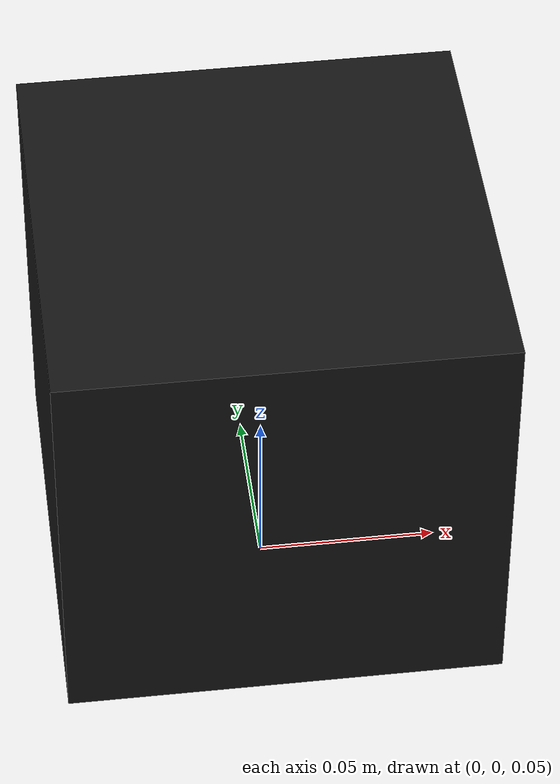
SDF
<?xml version="1.0"?>
<sdf version="1.10">
  <model name="uav_lidar_rig">
    <static>true</static>

    <link name="base_link">
      <pose>0 0 0.12 0 0 0</pose>

      <collision name="collision">
        <geometry>
          <box>
            <size>0.12 0.12 0.12</size>
          </box>
        </geometry>
      </collision>

      <visual name="visual">
        <geometry>
          <box>
            <size>0.12 0.12 0.12</size>
          </box>
        </geometry>
        <material>
          <ambient>0.08 0.08 0.08 1</ambient>
          <diffuse>0.08 0.08 0.08 1</diffuse>
        </material>
      </visual>

      <sensor name="scan" type="gpu_lidar">
        <topic>/scan</topic>
        <gz_frame_id>laser_frame</gz_frame_id>
        <update_rate>10</update_rate>
        <always_on>true</always_on>
        <visualize>false</visualize>
        <ray>
          <scan>
            <horizontal>
              <samples>361</samples>
              <resolution>1</resolution>
              <min_angle>-3.141592653589793</min_angle>
              <max_angle>3.141592653589793</max_angle>
            </horizontal>
            <vertical>
              <samples>1</samples>
              <resolution>1</resolution>
              <min_angle>0</min_angle>
              <max_angle>0</max_angle>
            </vertical>
          </scan>
          <range>
            <min>0.1</min>
            <max>12.0</max>
            <resolution>0.01</resolution>
          </range>
        </ray>
      </sensor>
    </link>
  </model>
</sdf>
